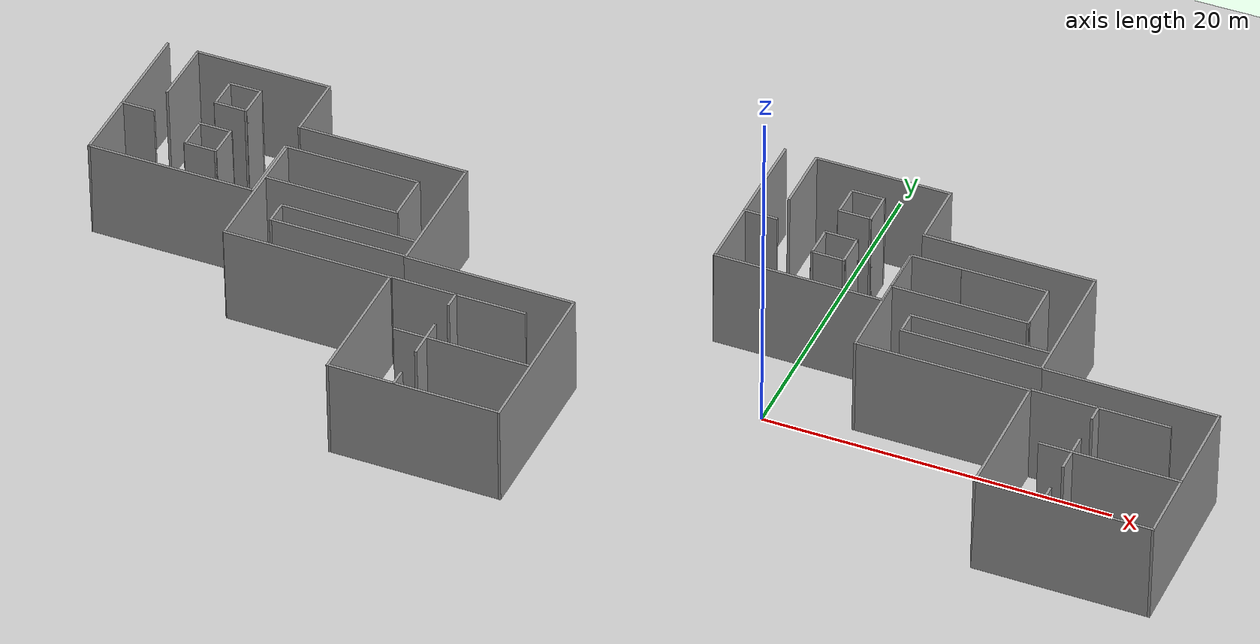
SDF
<sdf version="1.6">
 <world name="default">
  <light name="sun" type="directional">
   <pose>0 0 10 0 -0 0</pose>
   <diffuse>0.8 0.8 0.8 1</diffuse>
   <specular>0.2 0.2 0.2 1</specular>
   <attenuation>
    <range>1000</range>
    <constant>0.9</constant>
    <linear>0.01</linear>
    <quadratic>0.001</quadratic>
   </attenuation>
   <direction>-0.5 0.1 -0.9</direction>
  </light>
  <model name="ground_plane">
   <static>1</static>
   <link name="link">
    <collision name="collision">
     <geometry><plane><normal>0 0 1</normal><size>100 100</size></plane></geometry>
     <surface>
      <contact><collide_bitmask>65535</collide_bitmask></contact>
      <friction><ode><mu>100</mu><mu2>50</mu2></ode></friction>
     </surface>
    </collision>
    <visual name="visual">
     <cast_shadows>0</cast_shadows>
     <geometry><plane><normal>0 0 1</normal><size>100 100</size></plane></geometry>
     <material>
      <script><uri>file://media/materials/scripts/gazebo.material</uri><name>Gazebo/Grey</name></script>
     </material>
    </visual>
   </link>
  </model>
  <gravity>0 0 -9.8</gravity>
  <magnetic_field>6e-06 2.3e-05 -4.2e-05</magnetic_field>
  <atmosphere type="adiabatic"/>
  <physics name="default_physics" default="0" type="ode">
   <max_step_size>0.001</max_step_size>
   <real_time_factor>1</real_time_factor>
   <real_time_update_rate>1000</real_time_update_rate>
  </physics>
  <scene><ambient>0.4 0.4 0.4 1</ambient><background>0.7 0.7 0.7 1</background><shadows>1</shadows></scene>
  <spherical_coordinates>
   <surface_model>EARTH_WGS84</surface_model>
   <latitude_deg>0</latitude_deg>
   <longitude_deg>0</longitude_deg>
   <elevation>0</elevation>
   <heading_deg>0</heading_deg>
  </spherical_coordinates>
  <model name="floor01">
   <pose>9.73336 6.11335 0 0 -0 0</pose>
   <link name="Wall_119">
    <collision name="Wall_119_Collision">
     <geometry><box><size>10 0.15 6</size></box></geometry>
     <pose>0 0 3 0 -0 0</pose>
    </collision>
    <visual name="Wall_119_Visual">
     <pose>0 0 3 0 -0 0</pose>
     <geometry><box><size>10 0.15 6</size></box></geometry>
     <material>
      <script><uri>file://media/materials/scripts/gazebo.material</uri><name>Gazebo/Grey</name></script>
      <ambient>1 1 1 1</ambient>
     </material>
     <meta><layer>0</layer></meta>
    </visual>
    <pose>0 -4.925 0 0 -0 0</pose>
   </link>
   <link name="Wall_121">
    <collision name="Wall_121_Collision">
     <geometry><box><size>10 0.15 6</size></box></geometry>
     <pose>0 0 3 0 -0 0</pose>
    </collision>
    <visual name="Wall_121_Visual">
     <pose>0 0 3 0 -0 0</pose>
     <geometry><box><size>10 0.15 6</size></box></geometry>
     <material>
      <script><uri>file://media/materials/scripts/gazebo.material</uri><name>Gazebo/Grey</name></script>
      <ambient>1 1 1 1</ambient>
     </material>
     <meta><layer>0</layer></meta>
    </visual>
    <pose>0 4.925 0 0 -0 3.14159</pose>
   </link>
   <link name="Wall_124">
    <collision name="Wall_124_Collision">
     <geometry><box><size>8 0.15 6</size></box></geometry>
     <pose>0 0 3 0 -0 0</pose>
    </collision>
    <visual name="Wall_124_Visual">
     <pose>0 0 3 0 -0 0</pose>
     <geometry><box><size>8 0.15 6</size></box></geometry>
     <material>
      <script><uri>file://media/materials/scripts/gazebo.material</uri><name>Gazebo/Grey</name></script>
      <ambient>1 1 1 1</ambient>
     </material>
     <meta><layer>0</layer></meta>
    </visual>
    <pose>-1 3.075 0 0 -0 0</pose>
   </link>
   <link name="Wall_125">
    <collision name="Wall_125_Collision">
     <geometry><box><size>3 0.15 6</size></box></geometry>
     <pose>0 0 3 0 -0 0</pose>
    </collision>
    <visual name="Wall_125_Visual">
     <pose>0 0 3 0 -0 0</pose>
     <geometry><box><size>3 0.15 6</size></box></geometry>
     <material>
      <script><uri>file://media/materials/scripts/gazebo.material</uri><name>Gazebo/Grey</name></script>
      <ambient>1 1 1 1</ambient>
     </material>
     <meta><layer>0</layer></meta>
    </visual>
    <pose>2.925 1.65 0 0 0 -1.5708</pose>
   </link>
   <link name="Wall_126">
    <collision name="Wall_126_Collision">
     <geometry><box><size>8 0.15 6</size></box></geometry>
     <pose>0 0 3 0 -0 0</pose>
    </collision>
    <visual name="Wall_126_Visual">
     <pose>0 0 3 0 -0 0</pose>
     <geometry><box><size>8 0.15 6</size></box></geometry>
     <material>
      <script><uri>file://media/materials/scripts/gazebo.material</uri><name>Gazebo/Grey</name></script>
      <ambient>1 1 1 1</ambient>
     </material>
     <meta><layer>0</layer></meta>
    </visual>
    <pose>-1 0.225 0 0 -0 3.14159</pose>
   </link>
   <link name="Wall_129">
    <collision name="Wall_129_Collision">
     <geometry><box><size>8 0.15 6</size></box></geometry>
     <pose>0 0 3 0 -0 0</pose>
    </collision>
    <visual name="Wall_129_Visual">
     <pose>0 0 3 0 -0 0</pose>
     <geometry><box><size>8 0.15 6</size></box></geometry>
     <material>
      <script><uri>file://media/materials/scripts/gazebo.material</uri><name>Gazebo/Grey</name></script>
      <ambient>1 1 1 1</ambient>
     </material>
     <meta><layer>0</layer></meta>
    </visual>
    <pose>0.85 -1.625 0 0 -0 0</pose>
   </link>
   <link name="Wall_132">
    <collision name="Wall_132_Collision">
     <geometry><box><size>1.5 0.15 6</size></box></geometry>
     <pose>0 0 3 0 -0 0</pose>
    </collision>
    <visual name="Wall_132_Visual">
     <pose>0 0 3 0 -0 0</pose>
     <geometry><box><size>1.5 0.15 6</size></box></geometry>
     <material>
      <script><uri>file://media/materials/scripts/gazebo.material</uri><name>Gazebo/Grey</name></script>
      <ambient>1 1 1 1</ambient>
     </material>
     <meta><layer>0</layer></meta>
    </visual>
    <pose>-3.075 -2.3 0 0 0 -1.5708</pose>
   </link>
   <link name="Wall_133">
    <collision name="Wall_133_Collision">
     <geometry><box><size>8.15 0.15 6</size></box></geometry>
     <pose>0 0 3 0 -0 0</pose>
    </collision>
    <visual name="Wall_133_Visual">
     <pose>0 0 3 0 -0 0</pose>
     <geometry><box><size>8.15 0.15 6</size></box></geometry>
     <material>
      <script><uri>file://media/materials/scripts/gazebo.material</uri><name>Gazebo/Grey</name></script>
      <ambient>1 1 1 1</ambient>
     </material>
     <meta><layer>0</layer></meta>
    </visual>
    <pose>0.925 -2.975 0 0 -0 0</pose>
   </link>
   <link name="Wall_135">
    <collision name="Wall_135_Collision">
     <geometry><box><size>8 0.15 6</size></box></geometry>
     <pose>0 0 3 0 -0 0</pose>
    </collision>
    <visual name="Wall_135_Visual">
     <pose>0 0 3 0 -0 0</pose>
     <geometry><box><size>8 0.15 6</size></box></geometry>
     <material>
      <script><uri>file://media/materials/scripts/gazebo.material</uri><name>Gazebo/Grey</name></script>
      <ambient>1 1 1 1</ambient>
     </material>
     <meta><layer>0</layer></meta>
    </visual>
    <pose>4.925 1 0 0 0 -1.5708</pose>
   </link>
   <link name="Wall_138">
    <collision name="Wall_138_Collision">
     <geometry><box><size>8.15 0.15 6</size></box></geometry>
     <pose>0 0 3 0 -0 0</pose>
    </collision>
    <visual name="Wall_138_Visual">
     <pose>0 0 3 0 -0 0</pose>
     <geometry><box><size>8.15 0.15 6</size></box></geometry>
     <material>
      <script><uri>file://media/materials/scripts/gazebo.material</uri><name>Gazebo/Grey</name></script>
      <ambient>1 1 1 1</ambient>
     </material>
     <meta><layer>0</layer></meta>
    </visual>
    <pose>-4.925 -0.924999 0 0 0 -1.5708</pose>
   </link>
   <static>1</static>
  </model>
  <model name="floor02">
   <pose>19.6817 -1.81795 0 0 -0 0</pose>
   <link name="Wall_141">
    <collision name="Wall_141_Collision">
     <geometry><box><size>10 0.15 6</size></box></geometry>
     <pose>0 0 3 0 -0 0</pose>
    </collision>
    <visual name="Wall_141_Visual">
     <pose>0 0 3 0 -0 0</pose>
     <geometry><box><size>10 0.15 6</size></box></geometry>
     <material>
      <script><uri>file://media/materials/scripts/gazebo.material</uri><name>Gazebo/Grey</name></script>
      <ambient>1 1 1 1</ambient>
     </material>
     <meta><layer>0</layer></meta>
    </visual>
    <pose>-0.0295 -4.915 0 0 -0 0</pose>
   </link>
   <link name="Wall_143">
    <collision name="Wall_143_Collision">
     <geometry><box><size>10 0.15 6</size></box></geometry>
     <pose>0 0 3 0 -0 0</pose>
    </collision>
    <visual name="Wall_143_Visual">
     <pose>0 0 3 0 -0 0</pose>
     <geometry><box><size>10 0.15 6</size></box></geometry>
     <material>
      <script><uri>file://media/materials/scripts/gazebo.material</uri><name>Gazebo/Grey</name></script>
      <ambient>1 1 1 1</ambient>
     </material>
     <meta><layer>0</layer></meta>
    </visual>
    <pose>0.0295 4.925 0 0 -0 3.14159</pose>
   </link>
   <link name="Wall_147">
    <collision name="Wall_147_Collision">
     <geometry><box><size>8 0.15 6</size></box></geometry>
     <pose>0 0 3 0 -0 0</pose>
    </collision>
    <visual name="Wall_147_Visual">
     <pose>0 0 3 0 -0 0</pose>
     <geometry><box><size>8 0.15 6</size></box></geometry>
     <material>
      <script><uri>file://media/materials/scripts/gazebo.material</uri><name>Gazebo/Grey</name></script>
      <ambient>1 1 1 1</ambient>
     </material>
     <meta><layer>0</layer></meta>
    </visual>
    <pose>-1.0295 3.085 0 0 -0 0</pose>
   </link>
   <link name="Wall_149">
    <collision name="Wall_149_Collision">
     <geometry><box><size>1 0.15 6</size></box></geometry>
     <pose>0 0 3 0 -0 0</pose>
    </collision>
    <visual name="Wall_149_Visual">
     <pose>0 0 3 0 -0 0</pose>
     <geometry><box><size>1 0.15 6</size></box></geometry>
     <material>
      <script><uri>file://media/materials/scripts/gazebo.material</uri><name>Gazebo/Grey</name></script>
      <ambient>1 1 1 1</ambient>
     </material>
     <meta><layer>0</layer></meta>
    </visual>
    <pose>-1.1165 2.581 0 0 0 -1.5708</pose>
   </link>
   <link name="Wall_151">
    <collision name="Wall_151_Collision">
     <geometry><box><size>2.5 0.15 6</size></box></geometry>
     <pose>0 0 3 0 -0 0</pose>
    </collision>
    <visual name="Wall_151_Visual">
     <pose>0 0 3 0 -0 0</pose>
     <geometry><box><size>2.5 0.15 6</size></box></geometry>
     <material>
      <script><uri>file://media/materials/scripts/gazebo.material</uri><name>Gazebo/Grey</name></script>
      <ambient>1 1 1 1</ambient>
     </material>
     <meta><layer>0</layer></meta>
    </visual>
    <pose>-1.1165 -0.869001 0 0 0 -1.5708</pose>
   </link>
   <link name="Wall_153">
    <collision name="Wall_153_Collision">
     <geometry><box><size>1 0.15 6</size></box></geometry>
     <pose>0 0 3 0 -0 0</pose>
    </collision>
    <visual name="Wall_153_Visual">
     <pose>0 0 3 0 -0 0</pose>
     <geometry><box><size>1 0.15 6</size></box></geometry>
     <material>
      <script><uri>file://media/materials/scripts/gazebo.material</uri><name>Gazebo/Grey</name></script>
      <ambient>1 1 1 1</ambient>
     </material>
     <meta><layer>0</layer></meta>
    </visual>
    <pose>-1.1165 -4.409 0 0 0 -1.5708</pose>
   </link>
   <link name="Wall_156">
    <collision name="Wall_156_Collision">
     <geometry><box><size>8 0.15 6</size></box></geometry>
     <pose>0 0 3 0 -0 0</pose>
    </collision>
    <visual name="Wall_156_Visual">
     <pose>0 0 3 0 -0 0</pose>
     <geometry><box><size>8 0.15 6</size></box></geometry>
     <material>
      <script><uri>file://media/materials/scripts/gazebo.material</uri><name>Gazebo/Grey</name></script>
      <ambient>1 1 1 1</ambient>
     </material>
     <meta><layer>0</layer></meta>
    </visual>
    <pose>1.0085 -0.794001 0 0 -0 3.14159</pose>
   </link>
   <link name="Wall_161">
    <collision name="Wall_161_Collision">
     <geometry><box><size>10 0.15 6</size></box></geometry>
     <pose>0 0 3 0 -0 0</pose>
    </collision>
    <visual name="Wall_161_Visual">
     <pose>0 0 3 0 -0 0</pose>
     <geometry><box><size>10 0.15 6</size></box></geometry>
     <material>
      <script><uri>file://media/materials/scripts/gazebo.material</uri><name>Gazebo/Grey</name></script>
      <ambient>1 1 1 1</ambient>
     </material>
     <meta><layer>0</layer></meta>
    </visual>
    <pose>4.9545 0 0 0 0 -1.5708</pose>
   </link>
   <link name="Wall_165">
    <collision name="Wall_165_Collision">
     <geometry><box><size>8.15 0.15 6</size></box></geometry>
     <pose>0 0 3 0 -0 0</pose>
    </collision>
    <visual name="Wall_165_Visual">
     <pose>0 0 3 0 -0 0</pose>
     <geometry><box><size>8.15 0.15 6</size></box></geometry>
     <material>
      <script><uri>file://media/materials/scripts/gazebo.material</uri><name>Gazebo/Grey</name></script>
      <ambient>1 1 1 1</ambient>
     </material>
     <meta><layer>0</layer></meta>
    </visual>
    <pose>-4.9545 -0.915001 0 0 0 -1.5708</pose>
   </link>
   <static>1</static>
  </model>
  <model name="floor01_clone">
   <pose>-25.0322 1.41171 0 0 -0 0</pose>
   <link name="Wall_119">
    <collision name="Wall_119_Collision">
     <geometry><box><size>10 0.15 6</size></box></geometry>
     <pose>0 0 3 0 -0 0</pose>
    </collision>
    <visual name="Wall_119_Visual">
     <pose>0 0 3 0 -0 0</pose>
     <geometry><box><size>10 0.15 6</size></box></geometry>
     <material>
      <script><uri>file://media/materials/scripts/gazebo.material</uri><name>Gazebo/Grey</name></script>
      <ambient>1 1 1 1</ambient>
     </material>
     <meta><layer>0</layer></meta>
    </visual>
    <pose>0 -4.925 0 0 -0 0</pose>
   </link>
   <link name="Wall_121">
    <collision name="Wall_121_Collision">
     <geometry><box><size>10 0.15 6</size></box></geometry>
     <pose>0 0 3 0 -0 0</pose>
    </collision>
    <visual name="Wall_121_Visual">
     <pose>0 0 3 0 -0 0</pose>
     <geometry><box><size>10 0.15 6</size></box></geometry>
     <material>
      <script><uri>file://media/materials/scripts/gazebo.material</uri><name>Gazebo/Grey</name></script>
      <ambient>1 1 1 1</ambient>
     </material>
     <meta><layer>0</layer></meta>
    </visual>
    <pose>0 4.925 0 0 -0 3.14159</pose>
   </link>
   <link name="Wall_124">
    <collision name="Wall_124_Collision">
     <geometry><box><size>8 0.15 6</size></box></geometry>
     <pose>0 0 3 0 -0 0</pose>
    </collision>
    <visual name="Wall_124_Visual">
     <pose>0 0 3 0 -0 0</pose>
     <geometry><box><size>8 0.15 6</size></box></geometry>
     <material>
      <script><uri>file://media/materials/scripts/gazebo.material</uri><name>Gazebo/Grey</name></script>
      <ambient>1 1 1 1</ambient>
     </material>
     <meta><layer>0</layer></meta>
    </visual>
    <pose>-1 3.075 0 0 -0 0</pose>
   </link>
   <link name="Wall_125">
    <collision name="Wall_125_Collision">
     <geometry><box><size>3 0.15 6</size></box></geometry>
     <pose>0 0 3 0 -0 0</pose>
    </collision>
    <visual name="Wall_125_Visual">
     <pose>0 0 3 0 -0 0</pose>
     <geometry><box><size>3 0.15 6</size></box></geometry>
     <material>
      <script><uri>file://media/materials/scripts/gazebo.material</uri><name>Gazebo/Grey</name></script>
      <ambient>1 1 1 1</ambient>
     </material>
     <meta><layer>0</layer></meta>
    </visual>
    <pose>2.925 1.65 0 0 0 -1.5708</pose>
   </link>
   <link name="Wall_126">
    <collision name="Wall_126_Collision">
     <geometry><box><size>8 0.15 6</size></box></geometry>
     <pose>0 0 3 0 -0 0</pose>
    </collision>
    <visual name="Wall_126_Visual">
     <pose>0 0 3 0 -0 0</pose>
     <geometry><box><size>8 0.15 6</size></box></geometry>
     <material>
      <script><uri>file://media/materials/scripts/gazebo.material</uri><name>Gazebo/Grey</name></script>
      <ambient>1 1 1 1</ambient>
     </material>
     <meta><layer>0</layer></meta>
    </visual>
    <pose>-1 0.225 0 0 -0 3.14159</pose>
   </link>
   <link name="Wall_129">
    <collision name="Wall_129_Collision">
     <geometry><box><size>8 0.15 6</size></box></geometry>
     <pose>0 0 3 0 -0 0</pose>
    </collision>
    <visual name="Wall_129_Visual">
     <pose>0 0 3 0 -0 0</pose>
     <geometry><box><size>8 0.15 6</size></box></geometry>
     <material>
      <script><uri>file://media/materials/scripts/gazebo.material</uri><name>Gazebo/Grey</name></script>
      <ambient>1 1 1 1</ambient>
     </material>
     <meta><layer>0</layer></meta>
    </visual>
    <pose>0.85 -1.625 0 0 -0 0</pose>
   </link>
   <link name="Wall_132">
    <collision name="Wall_132_Collision">
     <geometry><box><size>1.5 0.15 6</size></box></geometry>
     <pose>0 0 3 0 -0 0</pose>
    </collision>
    <visual name="Wall_132_Visual">
     <pose>0 0 3 0 -0 0</pose>
     <geometry><box><size>1.5 0.15 6</size></box></geometry>
     <material>
      <script><uri>file://media/materials/scripts/gazebo.material</uri><name>Gazebo/Grey</name></script>
      <ambient>1 1 1 1</ambient>
     </material>
     <meta><layer>0</layer></meta>
    </visual>
    <pose>-3.075 -2.3 0 0 0 -1.5708</pose>
   </link>
   <link name="Wall_133">
    <collision name="Wall_133_Collision">
     <geometry><box><size>8.15 0.15 6</size></box></geometry>
     <pose>0 0 3 0 -0 0</pose>
    </collision>
    <visual name="Wall_133_Visual">
     <pose>0 0 3 0 -0 0</pose>
     <geometry><box><size>8.15 0.15 6</size></box></geometry>
     <material>
      <script><uri>file://media/materials/scripts/gazebo.material</uri><name>Gazebo/Grey</name></script>
      <ambient>1 1 1 1</ambient>
     </material>
     <meta><layer>0</layer></meta>
    </visual>
    <pose>0.925 -2.975 0 0 -0 0</pose>
   </link>
   <link name="Wall_135">
    <collision name="Wall_135_Collision">
     <geometry><box><size>8 0.15 6</size></box></geometry>
     <pose>0 0 3 0 -0 0</pose>
    </collision>
    <visual name="Wall_135_Visual">
     <pose>0 0 3 0 -0 0</pose>
     <geometry><box><size>8 0.15 6</size></box></geometry>
     <material>
      <script><uri>file://media/materials/scripts/gazebo.material</uri><name>Gazebo/Grey</name></script>
      <ambient>1 1 1 1</ambient>
     </material>
     <meta><layer>0</layer></meta>
    </visual>
    <pose>4.925 1 0 0 0 -1.5708</pose>
   </link>
   <link name="Wall_138">
    <collision name="Wall_138_Collision">
     <geometry><box><size>8.15 0.15 6</size></box></geometry>
     <pose>0 0 3 0 -0 0</pose>
    </collision>
    <visual name="Wall_138_Visual">
     <pose>0 0 3 0 -0 0</pose>
     <geometry><box><size>8.15 0.15 6</size></box></geometry>
     <material>
      <script><uri>file://media/materials/scripts/gazebo.material</uri><name>Gazebo/Grey</name></script>
      <ambient>1 1 1 1</ambient>
     </material>
     <meta><layer>0</layer></meta>
    </visual>
    <pose>-4.925 -0.924999 0 0 0 -1.5708</pose>
   </link>
   <static>1</static>
  </model>
  <model name="floor02_clone">
   <pose>-15.201 -6.5544 0 0 -0 0</pose>
   <link name="Wall_141">
    <collision name="Wall_141_Collision">
     <geometry><box><size>10 0.15 6</size></box></geometry>
     <pose>0 0 3 0 -0 0</pose>
    </collision>
    <visual name="Wall_141_Visual">
     <pose>0 0 3 0 -0 0</pose>
     <geometry><box><size>10 0.15 6</size></box></geometry>
     <material>
      <script><uri>file://media/materials/scripts/gazebo.material</uri><name>Gazebo/Grey</name></script>
      <ambient>1 1 1 1</ambient>
     </material>
     <meta><layer>0</layer></meta>
    </visual>
    <pose>-0.0295 -4.915 0 0 -0 0</pose>
   </link>
   <link name="Wall_143">
    <collision name="Wall_143_Collision">
     <geometry><box><size>10 0.15 6</size></box></geometry>
     <pose>0 0 3 0 -0 0</pose>
    </collision>
    <visual name="Wall_143_Visual">
     <pose>0 0 3 0 -0 0</pose>
     <geometry><box><size>10 0.15 6</size></box></geometry>
     <material>
      <script><uri>file://media/materials/scripts/gazebo.material</uri><name>Gazebo/Grey</name></script>
      <ambient>1 1 1 1</ambient>
     </material>
     <meta><layer>0</layer></meta>
    </visual>
    <pose>0.0295 4.925 0 0 -0 3.14159</pose>
   </link>
   <link name="Wall_147">
    <collision name="Wall_147_Collision">
     <geometry><box><size>8 0.15 6</size></box></geometry>
     <pose>0 0 3 0 -0 0</pose>
    </collision>
    <visual name="Wall_147_Visual">
     <pose>0 0 3 0 -0 0</pose>
     <geometry><box><size>8 0.15 6</size></box></geometry>
     <material>
      <script><uri>file://media/materials/scripts/gazebo.material</uri><name>Gazebo/Grey</name></script>
      <ambient>1 1 1 1</ambient>
     </material>
     <meta><layer>0</layer></meta>
    </visual>
    <pose>-1.0295 3.085 0 0 -0 0</pose>
   </link>
   <link name="Wall_149">
    <collision name="Wall_149_Collision">
     <geometry><box><size>1 0.15 6</size></box></geometry>
     <pose>0 0 3 0 -0 0</pose>
    </collision>
    <visual name="Wall_149_Visual">
     <pose>0 0 3 0 -0 0</pose>
     <geometry><box><size>1 0.15 6</size></box></geometry>
     <material>
      <script><uri>file://media/materials/scripts/gazebo.material</uri><name>Gazebo/Grey</name></script>
      <ambient>1 1 1 1</ambient>
     </material>
     <meta><layer>0</layer></meta>
    </visual>
    <pose>-1.1165 2.581 0 0 0 -1.5708</pose>
   </link>
   <link name="Wall_151">
    <collision name="Wall_151_Collision">
     <geometry><box><size>2.5 0.15 6</size></box></geometry>
     <pose>0 0 3 0 -0 0</pose>
    </collision>
    <visual name="Wall_151_Visual">
     <pose>0 0 3 0 -0 0</pose>
     <geometry><box><size>2.5 0.15 6</size></box></geometry>
     <material>
      <script><uri>file://media/materials/scripts/gazebo.material</uri><name>Gazebo/Grey</name></script>
      <ambient>1 1 1 1</ambient>
     </material>
     <meta><layer>0</layer></meta>
    </visual>
    <pose>-1.1165 -0.869001 0 0 0 -1.5708</pose>
   </link>
   <link name="Wall_153">
    <collision name="Wall_153_Collision">
     <geometry><box><size>1 0.15 6</size></box></geometry>
     <pose>0 0 3 0 -0 0</pose>
    </collision>
    <visual name="Wall_153_Visual">
     <pose>0 0 3 0 -0 0</pose>
     <geometry><box><size>1 0.15 6</size></box></geometry>
     <material>
      <script><uri>file://media/materials/scripts/gazebo.material</uri><name>Gazebo/Grey</name></script>
      <ambient>1 1 1 1</ambient>
     </material>
     <meta><layer>0</layer></meta>
    </visual>
    <pose>-1.1165 -4.409 0 0 0 -1.5708</pose>
   </link>
   <link name="Wall_156">
    <collision name="Wall_156_Collision">
     <geometry><box><size>8 0.15 6</size></box></geometry>
     <pose>0 0 3 0 -0 0</pose>
    </collision>
    <visual name="Wall_156_Visual">
     <pose>0 0 3 0 -0 0</pose>
     <geometry><box><size>8 0.15 6</size></box></geometry>
     <material>
      <script><uri>file://media/materials/scripts/gazebo.material</uri><name>Gazebo/Grey</name></script>
      <ambient>1 1 1 1</ambient>
     </material>
     <meta><layer>0</layer></meta>
    </visual>
    <pose>1.0085 -0.794001 0 0 -0 3.14159</pose>
   </link>
   <link name="Wall_161">
    <collision name="Wall_161_Collision">
     <geometry><box><size>10 0.15 6</size></box></geometry>
     <pose>0 0 3 0 -0 0</pose>
    </collision>
    <visual name="Wall_161_Visual">
     <pose>0 0 3 0 -0 0</pose>
     <geometry><box><size>10 0.15 6</size></box></geometry>
     <material>
      <script><uri>file://media/materials/scripts/gazebo.material</uri><name>Gazebo/Grey</name></script>
      <ambient>1 1 1 1</ambient>
     </material>
     <meta><layer>0</layer></meta>
    </visual>
    <pose>4.9545 0 0 0 0 -1.5708</pose>
   </link>
   <link name="Wall_165">
    <collision name="Wall_165_Collision">
     <geometry><box><size>8.15 0.15 6</size></box></geometry>
     <pose>0 0 3 0 -0 0</pose>
    </collision>
    <visual name="Wall_165_Visual">
     <pose>0 0 3 0 -0 0</pose>
     <geometry><box><size>8.15 0.15 6</size></box></geometry>
     <material>
      <script><uri>file://media/materials/scripts/gazebo.material</uri><name>Gazebo/Grey</name></script>
      <ambient>1 1 1 1</ambient>
     </material>
     <meta><layer>0</layer></meta>
    </visual>
    <pose>-4.9545 -0.915001 0 0 0 -1.5708</pose>
   </link>
   <static>1</static>
  </model>
  <model name="floor09">
   <pose>-35 5.26212 0 0 -0 0</pose>
   <link name="Wall_31">
    <collision name="Wall_31_Collision">
     <geometry><box><size>10 0.15 6</size></box></geometry>
     <pose>0 0 3 0 -0 0</pose>
    </collision>
    <visual name="Wall_31_Visual">
     <pose>0 0 3 0 -0 0</pose>
     <geometry><box><size>10 0.15 6</size></box></geometry>
     <material>
      <script><uri>file://media/materials/scripts/gazebo.material</uri><name>Gazebo/Grey</name></script>
      <ambient>1 1 1 1</ambient>
     </material>
     <meta><layer>0</layer></meta>
    </visual>
    <pose>-4.925 0 0 0 0 -1.5708</pose>
   </link>
   <link name="Wall_32">
    <collision name="Wall_32_Collision">
     <geometry><box><size>10 0.15 6</size></box></geometry>
     <pose>0 0 3 0 -0 0</pose>
    </collision>
    <visual name="Wall_32_Visual">
     <pose>0 0 3 0 -0 0</pose>
     <geometry><box><size>10 0.15 6</size></box></geometry>
     <material>
      <script><uri>file://media/materials/scripts/gazebo.material</uri><name>Gazebo/Grey</name></script>
      <ambient>1 1 1 1</ambient>
     </material>
     <meta><layer>0</layer></meta>
    </visual>
    <pose>0 -4.925 0 0 -0 0</pose>
   </link>
   <link name="Wall_37">
    <collision name="Wall_37_Collision">
     <geometry><box><size>4 0.15 6</size></box></geometry>
     <pose>0 0 3 0 -0 0</pose>
    </collision>
    <visual name="Wall_37_Visual">
     <pose>0 0 3 0 -0 0</pose>
     <geometry><box><size>4 0.15 6</size></box></geometry>
     <material>
      <script><uri>file://media/materials/scripts/gazebo.material</uri><name>Gazebo/Grey</name></script>
      <ambient>1 1 1 1</ambient>
     </material>
     <meta><layer>0</layer></meta>
    </visual>
    <pose>-3.075 3 0 0 0 -1.5708</pose>
   </link>
   <link name="Wall_39">
    <collision name="Wall_39_Collision">
     <geometry><box><size>2 0.15 6</size></box></geometry>
     <pose>0 0 3 0 -0 0</pose>
    </collision>
    <visual name="Wall_39_Visual">
     <pose>0 0 3 0 -0 0</pose>
     <geometry><box><size>2 0.15 6</size></box></geometry>
     <material>
      <script><uri>file://media/materials/scripts/gazebo.material</uri><name>Gazebo/Grey</name></script>
      <ambient>1 1 1 1</ambient>
     </material>
     <meta><layer>0</layer></meta>
    </visual>
    <pose>-4 -0.775 0 0 -0 3.14159</pose>
   </link>
   <link name="Wall_41">
    <collision name="Wall_41_Collision">
     <geometry><box><size>8 0.15 6</size></box></geometry>
     <pose>0 0 3 0 -0 0</pose>
    </collision>
    <visual name="Wall_41_Visual">
     <pose>0 0 3 0 -0 0</pose>
     <geometry><box><size>8 0.15 6</size></box></geometry>
     <material>
      <script><uri>file://media/materials/scripts/gazebo.material</uri><name>Gazebo/Grey</name></script>
      <ambient>1 1 1 1</ambient>
     </material>
     <meta><layer>0</layer></meta>
    </visual>
    <pose>0.85 4.925 0 0 -0 0</pose>
   </link>
   <link name="Wall_43">
    <collision name="Wall_43_Collision">
     <geometry><box><size>2 0.15 6</size></box></geometry>
     <pose>0 0 3 0 -0 0</pose>
    </collision>
    <visual name="Wall_43_Visual">
     <pose>0 0 3 0 -0 0</pose>
     <geometry><box><size>2 0.15 6</size></box></geometry>
     <material>
      <script><uri>file://media/materials/scripts/gazebo.material</uri><name>Gazebo/Grey</name></script>
      <ambient>1 1 1 1</ambient>
     </material>
     <meta><layer>0</layer></meta>
    </visual>
    <pose>-0.224999 2.15 0 0 0 -1.5708</pose>
   </link>
   <link name="Wall_44">
    <collision name="Wall_44_Collision">
     <geometry><box><size>2 0.15 6</size></box></geometry>
     <pose>0 0 3 0 -0 0</pose>
    </collision>
    <visual name="Wall_44_Visual">
     <pose>0 0 3 0 -0 0</pose>
     <geometry><box><size>2 0.15 6</size></box></geometry>
     <material>
      <script><uri>file://media/materials/scripts/gazebo.material</uri><name>Gazebo/Grey</name></script>
      <ambient>1 1 1 1</ambient>
     </material>
     <meta><layer>0</layer></meta>
    </visual>
    <pose>0.7 1.225 0 0 -0 0</pose>
   </link>
   <link name="Wall_45">
    <collision name="Wall_45_Collision">
     <geometry><box><size>2 0.15 6</size></box></geometry>
     <pose>0 0 3 0 -0 0</pose>
    </collision>
    <visual name="Wall_45_Visual">
     <pose>0 0 3 0 -0 0</pose>
     <geometry><box><size>2 0.15 6</size></box></geometry>
     <material>
      <script><uri>file://media/materials/scripts/gazebo.material</uri><name>Gazebo/Grey</name></script>
      <ambient>1 1 1 1</ambient>
     </material>
     <meta><layer>0</layer></meta>
    </visual>
    <pose>1.625 2.15 0 0 -0 1.5708</pose>
   </link>
   <link name="Wall_46">
    <collision name="Wall_46_Collision">
     <geometry><box><size>2 0.15 6</size></box></geometry>
     <pose>0 0 3 0 -0 0</pose>
    </collision>
    <visual name="Wall_46_Visual">
     <pose>0 0 3 0 -0 0</pose>
     <geometry><box><size>2 0.15 6</size></box></geometry>
     <material>
      <script><uri>file://media/materials/scripts/gazebo.material</uri><name>Gazebo/Grey</name></script>
      <ambient>1 1 1 1</ambient>
     </material>
     <meta><layer>0</layer></meta>
    </visual>
    <pose>0.7 3.075 0 0 -0 3.14159</pose>
   </link>
   <link name="Wall_48">
    <collision name="Wall_48_Collision">
     <geometry><box><size>2 0.15 6</size></box></geometry>
     <pose>0 0 3 0 -0 0</pose>
    </collision>
    <visual name="Wall_48_Visual">
     <pose>0 0 3 0 -0 0</pose>
     <geometry><box><size>2 0.15 6</size></box></geometry>
     <material>
      <script><uri>file://media/materials/scripts/gazebo.material</uri><name>Gazebo/Grey</name></script>
      <ambient>1 1 1 1</ambient>
     </material>
     <meta><layer>0</layer></meta>
    </visual>
    <pose>-0.224999 -1.7 0 0 0 -1.5708</pose>
   </link>
   <link name="Wall_49">
    <collision name="Wall_49_Collision">
     <geometry><box><size>2 0.15 6</size></box></geometry>
     <pose>0 0 3 0 -0 0</pose>
    </collision>
    <visual name="Wall_49_Visual">
     <pose>0 0 3 0 -0 0</pose>
     <geometry><box><size>2 0.15 6</size></box></geometry>
     <material>
      <script><uri>file://media/materials/scripts/gazebo.material</uri><name>Gazebo/Grey</name></script>
      <ambient>1 1 1 1</ambient>
     </material>
     <meta><layer>0</layer></meta>
    </visual>
    <pose>0.7 -2.625 0 0 -0 0</pose>
   </link>
   <link name="Wall_50">
    <collision name="Wall_50_Collision">
     <geometry><box><size>2 0.15 6</size></box></geometry>
     <pose>0 0 3 0 -0 0</pose>
    </collision>
    <visual name="Wall_50_Visual">
     <pose>0 0 3 0 -0 0</pose>
     <geometry><box><size>2 0.15 6</size></box></geometry>
     <material>
      <script><uri>file://media/materials/scripts/gazebo.material</uri><name>Gazebo/Grey</name></script>
      <ambient>1 1 1 1</ambient>
     </material>
     <meta><layer>0</layer></meta>
    </visual>
    <pose>1.625 -1.7 0 0 -0 1.5708</pose>
   </link>
   <link name="Wall_51">
    <collision name="Wall_51_Collision">
     <geometry><box><size>2 0.15 6</size></box></geometry>
     <pose>0 0 3 0 -0 0</pose>
    </collision>
    <visual name="Wall_51_Visual">
     <pose>0 0 3 0 -0 0</pose>
     <geometry><box><size>2 0.15 6</size></box></geometry>
     <material>
      <script><uri>file://media/materials/scripts/gazebo.material</uri><name>Gazebo/Grey</name></script>
      <ambient>1 1 1 1</ambient>
     </material>
     <meta><layer>0</layer></meta>
    </visual>
    <pose>0.7 -0.775 0 0 -0 3.14159</pose>
   </link>
   <link name="Wall_53">
    <collision name="Wall_53_Collision">
     <geometry><box><size>4 0.15 6</size></box></geometry>
     <pose>0 0 3 0 -0 0</pose>
    </collision>
    <visual name="Wall_53_Visual">
     <pose>0 0 3 0 -0 0</pose>
     <geometry><box><size>4 0.15 6</size></box></geometry>
     <material>
      <script><uri>file://media/materials/scripts/gazebo.material</uri><name>Gazebo/Grey</name></script>
      <ambient>1 1 1 1</ambient>
     </material>
     <meta><layer>0</layer></meta>
    </visual>
    <pose>4.925 3 0 0 0 -1.5708</pose>
   </link>
   <link name="Wall_55">
    <collision name="Wall_55_Collision">
     <geometry><box><size>4.3 0.15 6</size></box></geometry>
     <pose>0 0 3 0 -0 0</pose>
    </collision>
    <visual name="Wall_55_Visual">
     <pose>0 0 3 0 -0 0</pose>
     <geometry><box><size>4.3 0.15 6</size></box></geometry>
     <material>
      <script><uri>file://media/materials/scripts/gazebo.material</uri><name>Gazebo/Grey</name></script>
      <ambient>1 1 1 1</ambient>
     </material>
     <meta><layer>0</layer></meta>
    </visual>
    <pose>4.925 -2.85 0 0 0 -1.5708</pose>
   </link>
   <static>1</static>
  </model>
  <model name="floor10">
   <pose>1.37667 10 0 0 -0 0</pose>
   <link name="Wall_48">
    <collision name="Wall_48_Collision">
     <geometry><box><size>10 0.15 6</size></box></geometry>
     <pose>0 0 3 0 -0 0</pose>
    </collision>
    <visual name="Wall_48_Visual">
     <pose>0 0 3 0 -0 0</pose>
     <geometry><box><size>10 0.15 6</size></box></geometry>
     <material>
      <script><uri>file://media/materials/scripts/gazebo.material</uri><name>Gazebo/Grey</name></script>
      <ambient>1 1 1 1</ambient>
     </material>
     <meta><layer>0</layer></meta>
    </visual>
    <pose>-6.275 -0.000226 0 0 0 -1.5708</pose>
   </link>
   <link name="Wall_53">
    <collision name="Wall_53_Collision">
     <geometry><box><size>4 0.15 6</size></box></geometry>
     <pose>0 0 3 0 -0 0</pose>
    </collision>
    <visual name="Wall_53_Visual">
     <pose>0 0 3 0 -0 0</pose>
     <geometry><box><size>4 0.15 6</size></box></geometry>
     <material>
      <script><uri>file://media/materials/scripts/gazebo.material</uri><name>Gazebo/Grey</name></script>
      <ambient>1 1 1 1</ambient>
     </material>
     <meta><layer>0</layer></meta>
    </visual>
    <pose>-4.425 2.99977 0 0 0 -1.5708</pose>
   </link>
   <link name="Wall_55">
    <collision name="Wall_55_Collision">
     <geometry><box><size>2 0.15 6</size></box></geometry>
     <pose>0 0 3 0 -0 0</pose>
    </collision>
    <visual name="Wall_55_Visual">
     <pose>0 0 3 0 -0 0</pose>
     <geometry><box><size>2 0.15 6</size></box></geometry>
     <material>
      <script><uri>file://media/materials/scripts/gazebo.material</uri><name>Gazebo/Grey</name></script>
      <ambient>1 1 1 1</ambient>
     </material>
     <meta><layer>0</layer></meta>
    </visual>
    <pose>-5.35 -0.775226 0 0 -0 3.14159</pose>
   </link>
   <link name="Wall_57">
    <collision name="Wall_57_Collision">
     <geometry><box><size>8 0.15 6</size></box></geometry>
     <pose>0 0 3 0 -0 0</pose>
    </collision>
    <visual name="Wall_57_Visual">
     <pose>0 0 3 0 -0 0</pose>
     <geometry><box><size>8 0.15 6</size></box></geometry>
     <material>
      <script><uri>file://media/materials/scripts/gazebo.material</uri><name>Gazebo/Grey</name></script>
      <ambient>1 1 1 1</ambient>
     </material>
     <meta><layer>0</layer></meta>
    </visual>
    <pose>-0.5 4.92477 0 0 -0 0</pose>
   </link>
   <link name="Wall_59">
    <collision name="Wall_59_Collision">
     <geometry><box><size>2 0.15 6</size></box></geometry>
     <pose>0 0 3 0 -0 0</pose>
    </collision>
    <visual name="Wall_59_Visual">
     <pose>0 0 3 0 -0 0</pose>
     <geometry><box><size>2 0.15 6</size></box></geometry>
     <material>
      <script><uri>file://media/materials/scripts/gazebo.material</uri><name>Gazebo/Grey</name></script>
      <ambient>1 1 1 1</ambient>
     </material>
     <meta><layer>0</layer></meta>
    </visual>
    <pose>-1.575 2.14977 0 0 0 -1.5708</pose>
   </link>
   <link name="Wall_60">
    <collision name="Wall_60_Collision">
     <geometry><box><size>2 0.15 6</size></box></geometry>
     <pose>0 0 3 0 -0 0</pose>
    </collision>
    <visual name="Wall_60_Visual">
     <pose>0 0 3 0 -0 0</pose>
     <geometry><box><size>2 0.15 6</size></box></geometry>
     <material>
      <script><uri>file://media/materials/scripts/gazebo.material</uri><name>Gazebo/Grey</name></script>
      <ambient>1 1 1 1</ambient>
     </material>
     <meta><layer>0</layer></meta>
    </visual>
    <pose>-0.649999 1.22477 0 0 -0 0</pose>
   </link>
   <link name="Wall_61">
    <collision name="Wall_61_Collision">
     <geometry><box><size>2 0.15 6</size></box></geometry>
     <pose>0 0 3 0 -0 0</pose>
    </collision>
    <visual name="Wall_61_Visual">
     <pose>0 0 3 0 -0 0</pose>
     <geometry><box><size>2 0.15 6</size></box></geometry>
     <material>
      <script><uri>file://media/materials/scripts/gazebo.material</uri><name>Gazebo/Grey</name></script>
      <ambient>1 1 1 1</ambient>
     </material>
     <meta><layer>0</layer></meta>
    </visual>
    <pose>0.275001 2.14977 0 0 -0 1.5708</pose>
   </link>
   <link name="Wall_62">
    <collision name="Wall_62_Collision">
     <geometry><box><size>2 0.15 6</size></box></geometry>
     <pose>0 0 3 0 -0 0</pose>
    </collision>
    <visual name="Wall_62_Visual">
     <pose>0 0 3 0 -0 0</pose>
     <geometry><box><size>2 0.15 6</size></box></geometry>
     <material>
      <script><uri>file://media/materials/scripts/gazebo.material</uri><name>Gazebo/Grey</name></script>
      <ambient>1 1 1 1</ambient>
     </material>
     <meta><layer>0</layer></meta>
    </visual>
    <pose>-0.649999 3.07477 0 0 -0 3.14159</pose>
   </link>
   <link name="Wall_64">
    <collision name="Wall_64_Collision">
     <geometry><box><size>2 0.15 6</size></box></geometry>
     <pose>0 0 3 0 -0 0</pose>
    </collision>
    <visual name="Wall_64_Visual">
     <pose>0 0 3 0 -0 0</pose>
     <geometry><box><size>2 0.15 6</size></box></geometry>
     <material>
      <script><uri>file://media/materials/scripts/gazebo.material</uri><name>Gazebo/Grey</name></script>
      <ambient>1 1 1 1</ambient>
     </material>
     <meta><layer>0</layer></meta>
    </visual>
    <pose>-0.649999 -0.775226 0 0 -0 0</pose>
   </link>
   <link name="Wall_65">
    <collision name="Wall_65_Collision">
     <geometry><box><size>2 0.15 6</size></box></geometry>
     <pose>0 0 3 0 -0 0</pose>
    </collision>
    <visual name="Wall_65_Visual">
     <pose>0 0 3 0 -0 0</pose>
     <geometry><box><size>2 0.15 6</size></box></geometry>
     <material>
      <script><uri>file://media/materials/scripts/gazebo.material</uri><name>Gazebo/Grey</name></script>
      <ambient>1 1 1 1</ambient>
     </material>
     <meta><layer>0</layer></meta>
    </visual>
    <pose>0.275001 -1.70023 0 0 0 -1.5708</pose>
   </link>
   <link name="Wall_66">
    <collision name="Wall_66_Collision">
     <geometry><box><size>2 0.15 6</size></box></geometry>
     <pose>0 0 3 0 -0 0</pose>
    </collision>
    <visual name="Wall_66_Visual">
     <pose>0 0 3 0 -0 0</pose>
     <geometry><box><size>2 0.15 6</size></box></geometry>
     <material>
      <script><uri>file://media/materials/scripts/gazebo.material</uri><name>Gazebo/Grey</name></script>
      <ambient>1 1 1 1</ambient>
     </material>
     <meta><layer>0</layer></meta>
    </visual>
    <pose>-0.649999 -2.62523 0 0 -0 3.14159</pose>
   </link>
   <link name="Wall_67">
    <collision name="Wall_67_Collision">
     <geometry><box><size>2 0.15 6</size></box></geometry>
     <pose>0 0 3 0 -0 0</pose>
    </collision>
    <visual name="Wall_67_Visual">
     <pose>0 0 3 0 -0 0</pose>
     <geometry><box><size>2 0.15 6</size></box></geometry>
     <material>
      <script><uri>file://media/materials/scripts/gazebo.material</uri><name>Gazebo/Grey</name></script>
      <ambient>1 1 1 1</ambient>
     </material>
     <meta><layer>0</layer></meta>
    </visual>
    <pose>-1.575 -1.70023 0 0 -0 1.5708</pose>
   </link>
   <link name="Wall_72">
    <collision name="Wall_72_Collision">
     <geometry><box><size>2 0.15 2.5</size></box></geometry>
     <pose>0 0 1.25 0 -0 0</pose>
    </collision>
    <visual name="Wall_72_Visual">
     <pose>0 0 1.25 0 -0 0</pose>
     <geometry><box><size>2 0.15 2.5</size></box></geometry>
     <material>
      <script><uri>file://media/materials/scripts/gazebo.material</uri><name>Gazebo/Grey</name></script>
      <ambient>1 1 1 1</ambient>
     </material>
     <meta><layer>0</layer></meta>
    </visual>
    <pose>2.49984 4.92499 0 0 -0 3.14136</pose>
   </link>
   <link name="Wall_74">
    <collision name="Wall_74_Collision">
     <geometry><box><size>3 0.15 6</size></box></geometry>
     <pose>0 0 3 0 -0 0</pose>
    </collision>
    <visual name="Wall_74_Visual">
     <pose>0 0 3 0 -0 0</pose>
     <geometry><box><size>3 0.15 6</size></box></geometry>
     <material>
      <script><uri>file://media/materials/scripts/gazebo.material</uri><name>Gazebo/Grey</name></script>
      <ambient>1 1 1 1</ambient>
     </material>
     <meta><layer>0</layer></meta>
    </visual>
    <pose>4.85 1.07477 0 0 -0 3.14159</pose>
   </link>
   <link name="Wall_76">
    <collision name="Wall_76_Collision">
     <geometry><box><size>3 0.15 6</size></box></geometry>
     <pose>0 0 3 0 -0 0</pose>
    </collision>
    <visual name="Wall_76_Visual">
     <pose>0 0 3 0 -0 0</pose>
     <geometry><box><size>3 0.15 6</size></box></geometry>
     <material>
      <script><uri>file://media/materials/scripts/gazebo.material</uri><name>Gazebo/Grey</name></script>
      <ambient>1 1 1 1</ambient>
     </material>
     <meta><layer>0</layer></meta>
    </visual>
    <pose>4.85 -0.824226 0 0 -0 0</pose>
   </link>
   <link name="Wall_79">
    <collision name="Wall_79_Collision">
     <geometry><box><size>4 0.15 6</size></box></geometry>
     <pose>0 0 3 0 -0 0</pose>
    </collision>
    <visual name="Wall_79_Visual">
     <pose>0 0 3 0 -0 0</pose>
     <geometry><box><size>4 0.15 6</size></box></geometry>
     <material>
      <script><uri>file://media/materials/scripts/gazebo.material</uri><name>Gazebo/Grey</name></script>
      <ambient>1 1 1 1</ambient>
     </material>
     <meta><layer>0</layer></meta>
    </visual>
    <pose>3.425 2.99977 0 0 0 -1.5708</pose>
   </link>
   <link name="Wall_85">
    <collision name="Wall_85_Collision">
     <geometry><box><size>4.25 0.15 6</size></box></geometry>
     <pose>0 0 3 0 -0 0</pose>
    </collision>
    <visual name="Wall_85_Visual">
     <pose>0 0 3 0 -0 0</pose>
     <geometry><box><size>4.25 0.15 6</size></box></geometry>
     <material>
      <script><uri>file://media/materials/scripts/gazebo.material</uri><name>Gazebo/Grey</name></script>
      <ambient>1 1 1 1</ambient>
     </material>
     <meta><layer>0</layer></meta>
    </visual>
    <pose>3.425 -2.87423 0 0 0 -1.5708</pose>
   </link>
   <link name="Wall_87">
    <collision name="Wall_87_Collision">
     <geometry><box><size>9.75 0.15 6</size></box></geometry>
     <pose>0 0 3 0 -0 0</pose>
    </collision>
    <visual name="Wall_87_Visual">
     <pose>0 0 3 0 -0 0</pose>
     <geometry><box><size>9.75 0.15 6</size></box></geometry>
     <material>
      <script><uri>file://media/materials/scripts/gazebo.material</uri><name>Gazebo/Grey</name></script>
      <ambient>1 1 1 1</ambient>
     </material>
     <meta><layer>0</layer></meta>
    </visual>
    <pose>-1.475 -4.92523 0 0 -0 0</pose>
   </link>
   <static>1</static>
  </model>
 </world>
</sdf>
